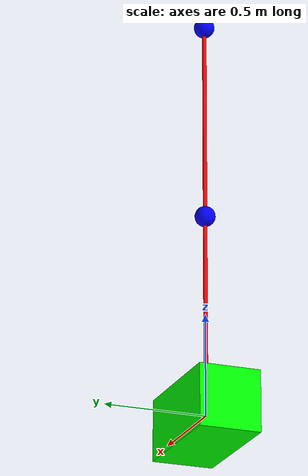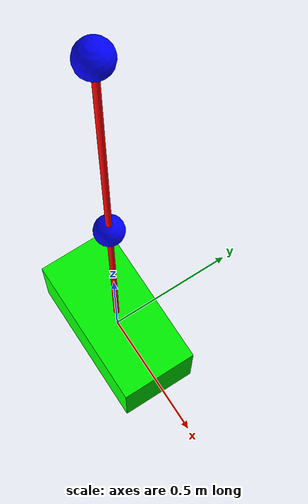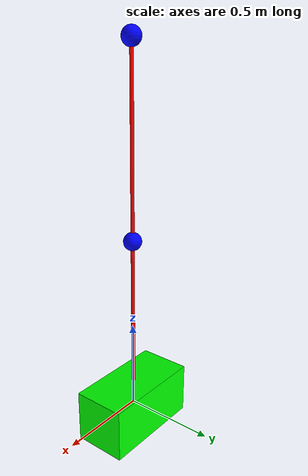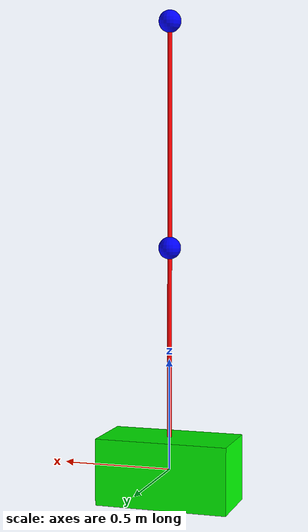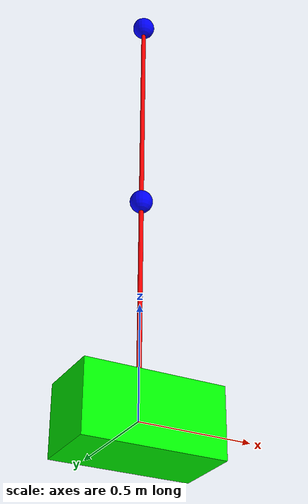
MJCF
<mujoco model="cart_pole">
  <!-- Options -->
  <option timestep="0.01"/>

  <!-- Assets -->
  <asset>
    <texture type="skybox" builtin="gradient" rgb1=".93 .74 .4" rgb2="0 0 0" width="512" height="512"/>
    <material name="cart_material" rgba="0 1 0 1"/>
    <material name="pole_material" rgba="1 0 0 1"/>
    <material name="sphere_material" rgba="0 0 0 1"/>
    <material name="end_material" rgba="0 0 1 1"/>
  </asset>

  <!-- World body -->
  <worldbody>

    <!-- Cart -->
    <body name="cart" pos="0 0 0">
      <geom type="box" size="0.3 0.15 0.15" material="cart_material" mass="1"/>

      <!-- Prismatic joint for the cart -->
      <joint name="x" type="slide" axis="1 0 0" limited="false"/>

      <!-- First Pole attached to the cart -->
      <body name="pole1" pos="0 0 0">
        <!-- Restore the original length of the first pole -->
        <geom type="cylinder" fromto="0 0 0 0 0 1.0" size="0.01" material="pole_material" mass="0" contype="0" conaffinity="0"/>
        <geom type="sphere" pos="0 0 1.0" size="0.05" material="end_material" mass="1" contype="0" conaffinity="0"/>

        <!-- Hinge joint for the first pole -->
        <joint name="theta1" type="hinge" axis="0 1 0" range="-inf inf"/>

        <!-- Second Pole attached to the end of the first pole -->
        <body name="pole2" pos="0 0 1.0">
          <!-- Disable collision for the second pole as well -->
          <geom type="cylinder" fromto="0 0 0 0 0 1.0" size="0.01" material="pole_material" mass="0" contype="0" conaffinity="0"/>
          <geom type="sphere" pos="0 0 1.0" size="0.05" material="end_material" mass="1" contype="0" conaffinity="0"/>

          <!-- Hinge joint for the second pole -->
          <joint name="theta2" type="hinge" axis="0 1 0" range="-inf inf"/>
        </body>
      </body>
    </body>
  </worldbody>

  <!-- Actuation -->
  <actuator>
    <general name="cart_motor" joint="x" ctrlrange="-300 300"/>
  </actuator>
</mujoco>
